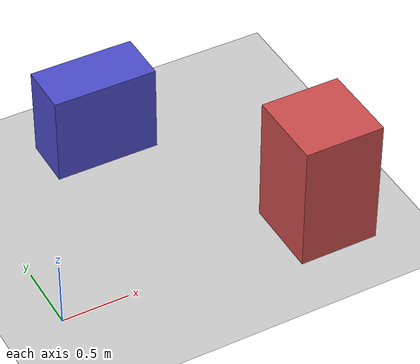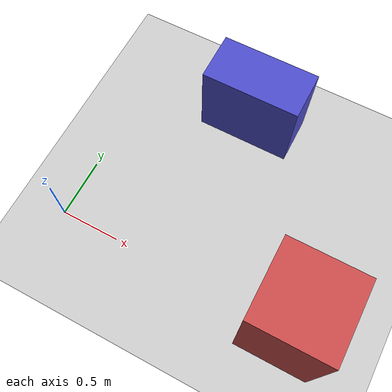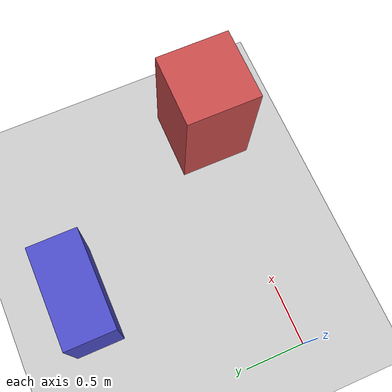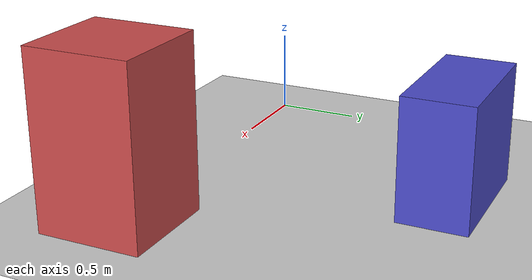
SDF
<?xml version="1.0" ?>
<sdf version="1.6">
  <world name="platform_demo">

    <include>
      <uri>model://ground_plane</uri>
    </include>

    <include>
      <uri>model://sun</uri>
    </include>

    <physics type="ode">
      <max_step_size>0.001</max_step_size>
      <real_time_update_rate>1000</real_time_update_rate>
    </physics>

    <scene>
      <ambient>0.4 0.4 0.4 1</ambient>
      <background>0.8 0.8 0.8 1</background>
    </scene>

    <!-- 障碍物 1 -->
    <model name="box_1">
      <static>true</static>
      <pose>2.0 0.0 0.5 0 0 0</pose>
      <link name="link">
        <collision name="collision">
          <geometry>
            <box>
              <size>0.6 0.6 1.0</size>
            </box>
          </geometry>
        </collision>
        <visual name="visual">
          <geometry>
            <box>
              <size>0.6 0.6 1.0</size>
            </box>
          </geometry>
          <material>
            <ambient>0.8 0.3 0.3 1</ambient>
            <diffuse>0.8 0.3 0.3 1</diffuse>
          </material>
        </visual>
      </link>
    </model>

    <!-- 障碍物 2 -->
    <model name="box_2">
      <static>true</static>
      <pose>1.0 1.5 0.35 0 0 0</pose>
      <link name="link">
        <collision name="collision">
          <geometry>
            <box>
              <size>0.8 0.4 0.7</size>
            </box>
          </geometry>
        </collision>
        <visual name="visual">
          <geometry>
            <box>
              <size>0.8 0.4 0.7</size>
            </box>
          </geometry>
          <material>
            <ambient>0.3 0.3 0.8 1</ambient>
            <diffuse>0.3 0.3 0.8 1</diffuse>
          </material>
        </visual>
      </link>
    </model>

  </world>
</sdf>
